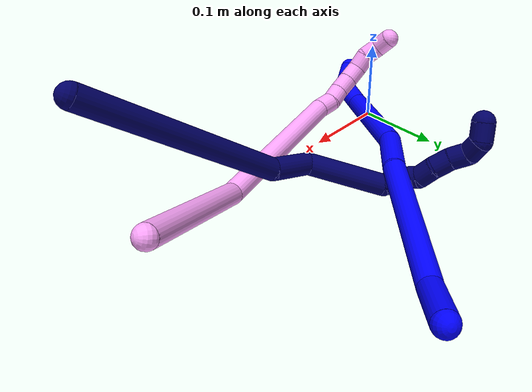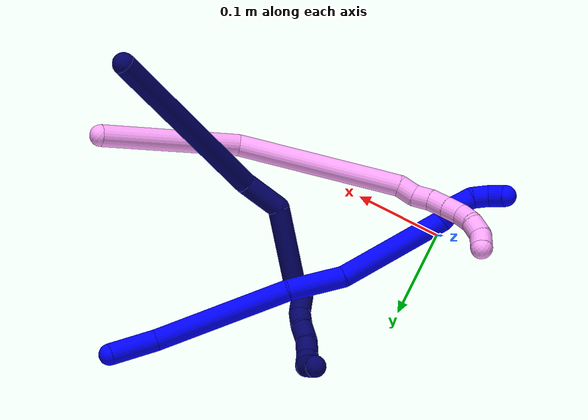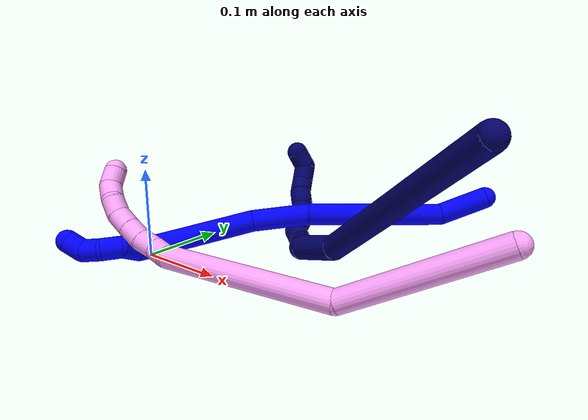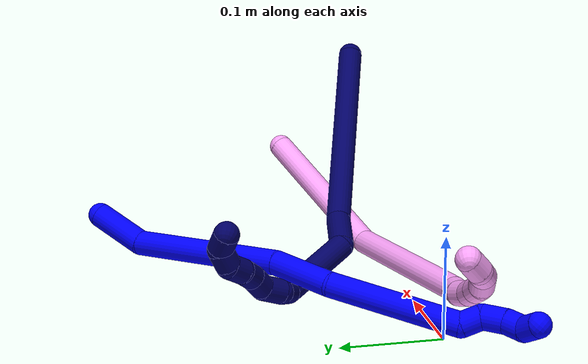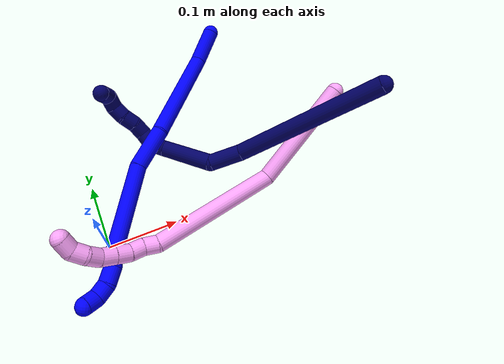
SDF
<sdf version="1.7">
 <world name="default">
  <model name="1">
   <static>0</static>
   <link name="1">
    <collision name="collision-cylinder-e_1_1_4">
     <pose>-0.008177 -0.003616 -0.026879 3.00788 -0.292852 -2.28922</pose>
     <geometry><cylinder><radius>0.0125</radius><length>0.056653</length></cylinder></geometry>
     <surface>
      <friction><ode><mu>1.16</mu><mu2>1.16</mu2><slip1>0</slip1><slip2>0</slip2></ode></friction>
      <contact><ode><kp>1e+06</kp><kd>1</kd><max_vel>0</max_vel><min_depth>0.001</min_depth></ode></contact>
     </surface>
    </collision>
    <visual name="visual-cylinder-e_1_1_4">
     <pose>-0.008177 -0.003616 -0.026879 3.00788 -0.292852 -2.28922</pose>
     <geometry><cylinder><radius>0.0125</radius><length>0.056653</length></cylinder></geometry>
     <material><ambient>0 0 1 1</ambient></material>
    </visual>
    <collision name="collision-cylinder-e_2_4_5">
     <pose>-0.048347 -0.046068 -0.116344 2.58622 -0.409757 -1.25982</pose>
     <geometry><cylinder><radius>0.0125</radius><length>0.16061</length></cylinder></geometry>
     <surface>
      <friction><ode><mu>1.16</mu><mu2>1.16</mu2><slip1>0</slip1><slip2>0</slip2></ode></friction>
      <contact><ode><kp>1e+06</kp><kd>1</kd><max_vel>0</max_vel><min_depth>0.001</min_depth></ode></contact>
     </surface>
    </collision>
    <visual name="visual-cylinder-e_2_4_5">
     <pose>-0.048347 -0.046068 -0.116344 2.58622 -0.409757 -1.25982</pose>
     <geometry><cylinder><radius>0.0125</radius><length>0.16061</length></cylinder></geometry>
     <material><ambient>0 0 1 1</ambient></material>
    </visual>
    <collision name="collision-cylinder-e_3_5_6">
     <pose>-0.094537 -0.094391 -0.206491 2.81005 -0.453282 -1.88631</pose>
     <geometry><cylinder><radius>0.0125</radius><length>0.064842</length></cylinder></geometry>
     <surface>
      <friction><ode><mu>1.16</mu><mu2>1.16</mu2><slip1>0</slip1><slip2>0</slip2></ode></friction>
      <contact><ode><kp>1e+06</kp><kd>1</kd><max_vel>0</max_vel><min_depth>0.001</min_depth></ode></contact>
     </surface>
    </collision>
    <visual name="visual-cylinder-e_3_5_6">
     <pose>-0.094537 -0.094391 -0.206491 2.81005 -0.453282 -1.88631</pose>
     <geometry><cylinder><radius>0.0125</radius><length>0.064842</length></cylinder></geometry>
     <material><ambient>0 0 1 1</ambient></material>
    </visual>
    <collision name="collision-cylinder-e_4_6_7">
     <pose>-0.121235 -0.130009 -0.29375 2.72901 -0.189502 -0.852573</pose>
     <geometry><cylinder><radius>0.0125</radius><length>0.132712</length></cylinder></geometry>
     <surface>
      <friction><ode><mu>1.16</mu><mu2>1.16</mu2><slip1>0</slip1><slip2>0</slip2></ode></friction>
      <contact><ode><kp>1e+06</kp><kd>1</kd><max_vel>0</max_vel><min_depth>0.001</min_depth></ode></contact>
     </surface>
    </collision>
    <visual name="visual-cylinder-e_4_6_7">
     <pose>-0.121235 -0.130009 -0.29375 2.72901 -0.189502 -0.852573</pose>
     <geometry><cylinder><radius>0.0125</radius><length>0.132712</length></cylinder></geometry>
     <material><ambient>0 0 1 1</ambient></material>
    </visual>
    <collision name="collision-cylinder-e_5_7_8">
     <pose>-0.134238 -0.165405 -0.358349 2.05722 -0.048012 -0.079673</pose>
     <geometry><cylinder><radius>0.0125</radius><length>0.020986</length></cylinder></geometry>
     <surface>
      <friction><ode><mu>1.16</mu><mu2>1.16</mu2><slip1>0</slip1><slip2>0</slip2></ode></friction>
      <contact><ode><kp>1e+06</kp><kd>1</kd><max_vel>0</max_vel><min_depth>0.001</min_depth></ode></contact>
     </surface>
    </collision>
    <visual name="visual-cylinder-e_5_7_8">
     <pose>-0.134238 -0.165405 -0.358349 2.05722 -0.048012 -0.079673</pose>
     <geometry><cylinder><radius>0.0125</radius><length>0.020986</length></cylinder></geometry>
     <material><ambient>0 0 1 1</ambient></material>
    </visual>
    <collision name="collision-cylinder-e_6_8_9">
     <pose>-0.137884 -0.180329 -0.373221 2.6255 -0.267513 -0.942956</pose>
     <geometry><cylinder><radius>0.0125</radius><length>0.023779</length></cylinder></geometry>
     <surface>
      <friction><ode><mu>1.16</mu><mu2>1.16</mu2><slip1>0</slip1><slip2>0</slip2></ode></friction>
      <contact><ode><kp>1e+06</kp><kd>1</kd><max_vel>0</max_vel><min_depth>0.001</min_depth></ode></contact>
     </surface>
    </collision>
    <visual name="visual-cylinder-e_6_8_9">
     <pose>-0.137884 -0.180329 -0.373221 2.6255 -0.267513 -0.942956</pose>
     <geometry><cylinder><radius>0.0125</radius><length>0.023779</length></cylinder></geometry>
     <material><ambient>0 0 1 1</ambient></material>
    </visual>
    <collision name="collision-cylinder-e_7_9_10">
     <pose>-0.146526 -0.188368 -0.391346 2.85746 -0.574695 -2.24009</pose>
     <geometry><cylinder><radius>0.0125</radius><length>0.020235</length></cylinder></geometry>
     <surface>
      <friction><ode><mu>1.16</mu><mu2>1.16</mu2><slip1>0</slip1><slip2>0</slip2></ode></friction>
      <contact><ode><kp>1e+06</kp><kd>1</kd><max_vel>0</max_vel><min_depth>0.001</min_depth></ode></contact>
     </surface>
    </collision>
    <visual name="visual-cylinder-e_7_9_10">
     <pose>-0.146526 -0.188368 -0.391346 2.85746 -0.574695 -2.24009</pose>
     <geometry><cylinder><radius>0.0125</radius><length>0.020235</length></cylinder></geometry>
     <material><ambient>0 0 1 1</ambient></material>
    </visual>
    <collision name="collision-cylinder-e_8_10_2">
     <pose>-0.159717 -0.19629 -0.402959 2.12913 -0.866619 -1.39078</pose>
     <geometry><cylinder><radius>0.0125</radius><length>0.020183</length></cylinder></geometry>
     <surface>
      <friction><ode><mu>1.16</mu><mu2>1.16</mu2><slip1>0</slip1><slip2>0</slip2></ode></friction>
      <contact><ode><kp>1e+06</kp><kd>1</kd><max_vel>0</max_vel><min_depth>0.001</min_depth></ode></contact>
     </surface>
    </collision>
    <visual name="visual-cylinder-e_8_10_2">
     <pose>-0.159717 -0.19629 -0.402959 2.12913 -0.866619 -1.39078</pose>
     <geometry><cylinder><radius>0.0125</radius><length>0.020183</length></cylinder></geometry>
     <material><ambient>0 0 1 1</ambient></material>
    </visual>
    <collision name="collision-sphere-2">
     <pose>-0.167409 -0.201831 -0.40642 0 -0 0</pose>
     <geometry><sphere><radius>0.0125</radius></sphere></geometry>
     <surface>
      <friction><ode><mu>1.16</mu><mu2>1.16</mu2><slip1>0</slip1><slip2>0</slip2></ode></friction>
      <contact><ode><kp>1e+06</kp><kd>1</kd><max_vel>0</max_vel><min_depth>0.001</min_depth></ode></contact>
     </surface>
    </collision>
    <visual name="visual-sphere-2">
     <pose>-0.167409 -0.201831 -0.40642 0 -0 0</pose>
     <geometry><sphere><radius>0.0125</radius></sphere></geometry>
     <material><ambient>0 0 1 1</ambient></material>
    </visual>
    <collision name="collision-sphere-10">
     <pose>-0.152026 -0.190748 -0.399498 0 -0 0</pose>
     <geometry><sphere><radius>0.0125</radius></sphere></geometry>
     <surface>
      <friction><ode><mu>1.16</mu><mu2>1.16</mu2><slip1>0</slip1><slip2>0</slip2></ode></friction>
      <contact><ode><kp>1e+06</kp><kd>1</kd><max_vel>0</max_vel><min_depth>0.001</min_depth></ode></contact>
     </surface>
    </collision>
    <visual name="visual-sphere-10">
     <pose>-0.152026 -0.190748 -0.399498 0 -0 0</pose>
     <geometry><sphere><radius>0.0125</radius></sphere></geometry>
     <material><ambient>0 0 1 1</ambient></material>
    </visual>
    <collision name="collision-sphere-9">
     <pose>-0.141027 -0.185987 -0.383195 0 -0 0</pose>
     <geometry><sphere><radius>0.0125</radius></sphere></geometry>
     <surface>
      <friction><ode><mu>1.16</mu><mu2>1.16</mu2><slip1>0</slip1><slip2>0</slip2></ode></friction>
      <contact><ode><kp>1e+06</kp><kd>1</kd><max_vel>0</max_vel><min_depth>0.001</min_depth></ode></contact>
     </surface>
    </collision>
    <visual name="visual-sphere-9">
     <pose>-0.141027 -0.185987 -0.383195 0 -0 0</pose>
     <geometry><sphere><radius>0.0125</radius></sphere></geometry>
     <material><ambient>0 0 1 1</ambient></material>
    </visual>
    <collision name="collision-sphere-4">
     <pose>-0.016355 -0.007231 -0.053757 0 -0 0</pose>
     <geometry><sphere><radius>0.0125</radius></sphere></geometry>
     <surface>
      <friction><ode><mu>1.16</mu><mu2>1.16</mu2><slip1>0</slip1><slip2>0</slip2></ode></friction>
      <contact><ode><kp>1e+06</kp><kd>1</kd><max_vel>0</max_vel><min_depth>0.001</min_depth></ode></contact>
     </surface>
    </collision>
    <visual name="visual-sphere-4">
     <pose>-0.016355 -0.007231 -0.053757 0 -0 0</pose>
     <geometry><sphere><radius>0.0125</radius></sphere></geometry>
     <material><ambient>0 0 1 1</ambient></material>
    </visual>
    <collision name="collision-sphere-1">
     <geometry><sphere><radius>0.0125</radius></sphere></geometry>
     <surface>
      <friction><ode><mu>1.16</mu><mu2>1.16</mu2><slip1>0</slip1><slip2>0</slip2></ode></friction>
      <contact><ode><kp>1e+06</kp><kd>1</kd><max_vel>0</max_vel><min_depth>0.001</min_depth></ode></contact>
     </surface>
    </collision>
    <visual name="visual-sphere-1">
     <geometry><sphere><radius>0.0125</radius></sphere></geometry>
     <material><ambient>0 0 1 1</ambient></material>
    </visual>
    <collision name="collision-sphere-8">
     <pose>-0.134741 -0.17467 -0.363248 0 -0 0</pose>
     <geometry><sphere><radius>0.0125</radius></sphere></geometry>
     <surface>
      <friction><ode><mu>1.16</mu><mu2>1.16</mu2><slip1>0</slip1><slip2>0</slip2></ode></friction>
      <contact><ode><kp>1e+06</kp><kd>1</kd><max_vel>0</max_vel><min_depth>0.001</min_depth></ode></contact>
     </surface>
    </collision>
    <visual name="visual-sphere-8">
     <pose>-0.134741 -0.17467 -0.363248 0 -0 0</pose>
     <geometry><sphere><radius>0.0125</radius></sphere></geometry>
     <material><ambient>0 0 1 1</ambient></material>
    </visual>
    <collision name="collision-sphere-5">
     <pose>-0.08034 -0.084904 -0.178931 0 -0 0</pose>
     <geometry><sphere><radius>0.0125</radius></sphere></geometry>
     <surface>
      <friction><ode><mu>1.16</mu><mu2>1.16</mu2><slip1>0</slip1><slip2>0</slip2></ode></friction>
      <contact><ode><kp>1e+06</kp><kd>1</kd><max_vel>0</max_vel><min_depth>0.001</min_depth></ode></contact>
     </surface>
    </collision>
    <visual name="visual-sphere-5">
     <pose>-0.08034 -0.084904 -0.178931 0 -0 0</pose>
     <geometry><sphere><radius>0.0125</radius></sphere></geometry>
     <material><ambient>0 0 1 1</ambient></material>
    </visual>
    <collision name="collision-sphere-6">
     <pose>-0.108735 -0.103879 -0.23405 0 -0 0</pose>
     <geometry><sphere><radius>0.0125</radius></sphere></geometry>
     <surface>
      <friction><ode><mu>1.16</mu><mu2>1.16</mu2><slip1>0</slip1><slip2>0</slip2></ode></friction>
      <contact><ode><kp>1e+06</kp><kd>1</kd><max_vel>0</max_vel><min_depth>0.001</min_depth></ode></contact>
     </surface>
    </collision>
    <visual name="visual-sphere-6">
     <pose>-0.108735 -0.103879 -0.23405 0 -0 0</pose>
     <geometry><sphere><radius>0.0125</radius></sphere></geometry>
     <material><ambient>0 0 1 1</ambient></material>
    </visual>
    <collision name="collision-sphere-7">
     <pose>-0.133734 -0.15614 -0.353449 0 -0 0</pose>
     <geometry><sphere><radius>0.0125</radius></sphere></geometry>
     <surface>
      <friction><ode><mu>1.16</mu><mu2>1.16</mu2><slip1>0</slip1><slip2>0</slip2></ode></friction>
      <contact><ode><kp>1e+06</kp><kd>1</kd><max_vel>0</max_vel><min_depth>0.001</min_depth></ode></contact>
     </surface>
    </collision>
    <visual name="visual-sphere-7">
     <pose>-0.133734 -0.15614 -0.353449 0 -0 0</pose>
     <geometry><sphere><radius>0.0125</radius></sphere></geometry>
     <material><ambient>0 0 1 1</ambient></material>
    </visual>
    <inertial>
     <pose>-0.085464 -0.093021 -0.210058 0 -0 0</pose>
     <mass>0.5</mass>
     <inertia>
      <ixx>-0.000294</ixx>
      <ixy>0</ixy>
      <ixz>0</ixz>
      <iyy>-0.000616</iyy>
      <iyz>0</iyz>
      <izz>0.000426</izz>
     </inertia>
    </inertial>
   </link>
   <pose>0.271951 0.286829 0.054566 -0.893345 0.380798 -0.316649</pose>
  </model>
  <model name="4">
   <static>0</static>
   <link name="4">
    <collision name="collision-cylinder-e_1_1_4">
     <pose>-0.011018 -0.044413 -0.06943 2.57251 -0.132899 -0.447445</pose>
     <geometry><cylinder><radius>0.0125</radius><length>0.166306</length></cylinder></geometry>
     <surface>
      <friction><ode><mu>1.16</mu><mu2>1.16</mu2><slip1>0</slip1><slip2>0</slip2></ode></friction>
      <contact><ode><kp>1e+06</kp><kd>1</kd><max_vel>0</max_vel><min_depth>0.001</min_depth></ode></contact>
     </surface>
    </collision>
    <visual name="visual-cylinder-e_1_1_4">
     <pose>-0.011018 -0.044413 -0.06943 2.57251 -0.132899 -0.447445</pose>
     <geometry><cylinder><radius>0.0125</radius><length>0.166306</length></cylinder></geometry>
     <material><ambient>1 0.65098 0.996078 1</ambient></material>
    </visual>
    <collision name="collision-cylinder-e_2_4_5">
     <pose>-0.074835 -0.109943 -0.215434 2.8725 -0.58664 -2.29891</pose>
     <geometry><cylinder><radius>0.0125</radius><length>0.190757</length></cylinder></geometry>
     <surface>
      <friction><ode><mu>1.16</mu><mu2>1.16</mu2><slip1>0</slip1><slip2>0</slip2></ode></friction>
      <contact><ode><kp>1e+06</kp><kd>1</kd><max_vel>0</max_vel><min_depth>0.001</min_depth></ode></contact>
     </surface>
    </collision>
    <visual name="visual-cylinder-e_2_4_5">
     <pose>-0.074835 -0.109943 -0.215434 2.8725 -0.58664 -2.29891</pose>
     <geometry><cylinder><radius>0.0125</radius><length>0.190757</length></cylinder></geometry>
     <material><ambient>1 0.65098 0.996078 1</ambient></material>
    </visual>
    <collision name="collision-cylinder-e_3_5_6">
     <pose>-0.133148 -0.129717 -0.300515 -2.98496 -0.569505 2.6177</pose>
     <geometry><cylinder><radius>0.0125</radius><length>0.020456</length></cylinder></geometry>
     <surface>
      <friction><ode><mu>1.16</mu><mu2>1.16</mu2><slip1>0</slip1><slip2>0</slip2></ode></friction>
      <contact><ode><kp>1e+06</kp><kd>1</kd><max_vel>0</max_vel><min_depth>0.001</min_depth></ode></contact>
     </surface>
    </collision>
    <visual name="visual-cylinder-e_3_5_6">
     <pose>-0.133148 -0.129717 -0.300515 -2.98496 -0.569505 2.6177</pose>
     <geometry><cylinder><radius>0.0125</radius><length>0.020456</length></cylinder></geometry>
     <material><ambient>1 0.65098 0.996078 1</ambient></material>
    </visual>
    <collision name="collision-cylinder-e_4_6_7">
     <pose>-0.146302 -0.129269 -0.315797 3.01006 -0.841043 -2.84914</pose>
     <geometry><cylinder><radius>0.0125</radius><length>0.020497</length></cylinder></geometry>
     <surface>
      <friction><ode><mu>1.16</mu><mu2>1.16</mu2><slip1>0</slip1><slip2>0</slip2></ode></friction>
      <contact><ode><kp>1e+06</kp><kd>1</kd><max_vel>0</max_vel><min_depth>0.001</min_depth></ode></contact>
     </surface>
    </collision>
    <visual name="visual-cylinder-e_4_6_7">
     <pose>-0.146302 -0.129269 -0.315797 3.01006 -0.841043 -2.84914</pose>
     <geometry><cylinder><radius>0.0125</radius><length>0.020497</length></cylinder></geometry>
     <material><ambient>1 0.65098 0.996078 1</ambient></material>
    </visual>
    <collision name="collision-cylinder-e_5_7_8">
     <pose>-0.16226 -0.128689 -0.328877 -2.91169 -0.909264 2.67766</pose>
     <geometry><cylinder><radius>0.0125</radius><length>0.021088</length></cylinder></geometry>
     <surface>
      <friction><ode><mu>1.16</mu><mu2>1.16</mu2><slip1>0</slip1><slip2>0</slip2></ode></friction>
      <contact><ode><kp>1e+06</kp><kd>1</kd><max_vel>0</max_vel><min_depth>0.001</min_depth></ode></contact>
     </surface>
    </collision>
    <visual name="visual-cylinder-e_5_7_8">
     <pose>-0.16226 -0.128689 -0.328877 -2.91169 -0.909264 2.67766</pose>
     <geometry><cylinder><radius>0.0125</radius><length>0.021088</length></cylinder></geometry>
     <material><ambient>1 0.65098 0.996078 1</ambient></material>
    </visual>
    <collision name="collision-cylinder-e_6_8_9">
     <pose>-0.178937 -0.125529 -0.341105 -2.86452 -0.935938 2.60324</pose>
     <geometry><cylinder><radius>0.0125</radius><length>0.02076</length></cylinder></geometry>
     <surface>
      <friction><ode><mu>1.16</mu><mu2>1.16</mu2><slip1>0</slip1><slip2>0</slip2></ode></friction>
      <contact><ode><kp>1e+06</kp><kd>1</kd><max_vel>0</max_vel><min_depth>0.001</min_depth></ode></contact>
     </surface>
    </collision>
    <visual name="visual-cylinder-e_6_8_9">
     <pose>-0.178937 -0.125529 -0.341105 -2.86452 -0.935938 2.60324</pose>
     <geometry><cylinder><radius>0.0125</radius><length>0.02076</length></cylinder></geometry>
     <material><ambient>1 0.65098 0.996078 1</ambient></material>
    </visual>
    <collision name="collision-cylinder-e_7_9_10">
     <pose>-0.195982 -0.119984 -0.350247 -2.26593 -1.04613 1.77776</pose>
     <geometry><cylinder><radius>0.0125</radius><length>0.020076</length></cylinder></geometry>
     <surface>
      <friction><ode><mu>1.16</mu><mu2>1.16</mu2><slip1>0</slip1><slip2>0</slip2></ode></friction>
      <contact><ode><kp>1e+06</kp><kd>1</kd><max_vel>0</max_vel><min_depth>0.001</min_depth></ode></contact>
     </surface>
    </collision>
    <visual name="visual-cylinder-e_7_9_10">
     <pose>-0.195982 -0.119984 -0.350247 -2.26593 -1.04613 1.77776</pose>
     <geometry><cylinder><radius>0.0125</radius><length>0.020076</length></cylinder></geometry>
     <material><ambient>1 0.65098 0.996078 1</ambient></material>
    </visual>
    <collision name="collision-cylinder-e_8_10_11">
     <pose>-0.21105 -0.110394 -0.358623 -2.30361 -0.691516 1.36022</pose>
     <geometry><cylinder><radius>0.0125</radius><length>0.02001</length></cylinder></geometry>
     <surface>
      <friction><ode><mu>1.16</mu><mu2>1.16</mu2><slip1>0</slip1><slip2>0</slip2></ode></friction>
      <contact><ode><kp>1e+06</kp><kd>1</kd><max_vel>0</max_vel><min_depth>0.001</min_depth></ode></contact>
     </surface>
    </collision>
    <visual name="visual-cylinder-e_8_10_11">
     <pose>-0.21105 -0.110394 -0.358623 -2.30361 -0.691516 1.36022</pose>
     <geometry><cylinder><radius>0.0125</radius><length>0.02001</length></cylinder></geometry>
     <material><ambient>1 0.65098 0.996078 1</ambient></material>
    </visual>
    <collision name="collision-cylinder-e_9_11_2">
     <pose>-0.222801 -0.096266 -0.364831 -1.69548 -0.565263 0.635826</pose>
     <geometry><cylinder><radius>0.0125</radius><length>0.020051</length></cylinder></geometry>
     <surface>
      <friction><ode><mu>1.16</mu><mu2>1.16</mu2><slip1>0</slip1><slip2>0</slip2></ode></friction>
      <contact><ode><kp>1e+06</kp><kd>1</kd><max_vel>0</max_vel><min_depth>0.001</min_depth></ode></contact>
     </surface>
    </collision>
    <visual name="visual-cylinder-e_9_11_2">
     <pose>-0.222801 -0.096266 -0.364831 -1.69548 -0.565263 0.635826</pose>
     <geometry><cylinder><radius>0.0125</radius><length>0.020051</length></cylinder></geometry>
     <material><ambient>1 0.65098 0.996078 1</ambient></material>
    </visual>
    <collision name="collision-sphere-2">
     <pose>-0.228171 -0.087865 -0.365884 0 -0 0</pose>
     <geometry><sphere><radius>0.0125</radius></sphere></geometry>
     <surface>
      <friction><ode><mu>1.16</mu><mu2>1.16</mu2><slip1>0</slip1><slip2>0</slip2></ode></friction>
      <contact><ode><kp>1e+06</kp><kd>1</kd><max_vel>0</max_vel><min_depth>0.001</min_depth></ode></contact>
     </surface>
    </collision>
    <visual name="visual-sphere-2">
     <pose>-0.228171 -0.087865 -0.365884 0 -0 0</pose>
     <geometry><sphere><radius>0.0125</radius></sphere></geometry>
     <material><ambient>1 0.65098 0.996078 1</ambient></material>
    </visual>
    <collision name="collision-sphere-11">
     <pose>-0.217431 -0.104666 -0.363778 0 -0 0</pose>
     <geometry><sphere><radius>0.0125</radius></sphere></geometry>
     <surface>
      <friction><ode><mu>1.16</mu><mu2>1.16</mu2><slip1>0</slip1><slip2>0</slip2></ode></friction>
      <contact><ode><kp>1e+06</kp><kd>1</kd><max_vel>0</max_vel><min_depth>0.001</min_depth></ode></contact>
     </surface>
    </collision>
    <visual name="visual-sphere-11">
     <pose>-0.217431 -0.104666 -0.363778 0 -0 0</pose>
     <geometry><sphere><radius>0.0125</radius></sphere></geometry>
     <material><ambient>1 0.65098 0.996078 1</ambient></material>
    </visual>
    <collision name="collision-sphere-10">
     <pose>-0.20467 -0.116122 -0.353467 0 -0 0</pose>
     <geometry><sphere><radius>0.0125</radius></sphere></geometry>
     <surface>
      <friction><ode><mu>1.16</mu><mu2>1.16</mu2><slip1>0</slip1><slip2>0</slip2></ode></friction>
      <contact><ode><kp>1e+06</kp><kd>1</kd><max_vel>0</max_vel><min_depth>0.001</min_depth></ode></contact>
     </surface>
    </collision>
    <visual name="visual-sphere-10">
     <pose>-0.20467 -0.116122 -0.353467 0 -0 0</pose>
     <geometry><sphere><radius>0.0125</radius></sphere></geometry>
     <material><ambient>1 0.65098 0.996078 1</ambient></material>
    </visual>
    <collision name="collision-sphere-9">
     <pose>-0.187295 -0.123845 -0.347026 0 -0 0</pose>
     <geometry><sphere><radius>0.0125</radius></sphere></geometry>
     <surface>
      <friction><ode><mu>1.16</mu><mu2>1.16</mu2><slip1>0</slip1><slip2>0</slip2></ode></friction>
      <contact><ode><kp>1e+06</kp><kd>1</kd><max_vel>0</max_vel><min_depth>0.001</min_depth></ode></contact>
     </surface>
    </collision>
    <visual name="visual-sphere-9">
     <pose>-0.187295 -0.123845 -0.347026 0 -0 0</pose>
     <geometry><sphere><radius>0.0125</radius></sphere></geometry>
     <material><ambient>1 0.65098 0.996078 1</ambient></material>
    </visual>
    <collision name="collision-sphere-4">
     <pose>-0.022037 -0.088825 -0.138861 0 -0 0</pose>
     <geometry><sphere><radius>0.0125</radius></sphere></geometry>
     <surface>
      <friction><ode><mu>1.16</mu><mu2>1.16</mu2><slip1>0</slip1><slip2>0</slip2></ode></friction>
      <contact><ode><kp>1e+06</kp><kd>1</kd><max_vel>0</max_vel><min_depth>0.001</min_depth></ode></contact>
     </surface>
    </collision>
    <visual name="visual-sphere-4">
     <pose>-0.022037 -0.088825 -0.138861 0 -0 0</pose>
     <geometry><sphere><radius>0.0125</radius></sphere></geometry>
     <material><ambient>1 0.65098 0.996078 1</ambient></material>
    </visual>
    <collision name="collision-sphere-1">
     <geometry><sphere><radius>0.0125</radius></sphere></geometry>
     <surface>
      <friction><ode><mu>1.16</mu><mu2>1.16</mu2><slip1>0</slip1><slip2>0</slip2></ode></friction>
      <contact><ode><kp>1e+06</kp><kd>1</kd><max_vel>0</max_vel><min_depth>0.001</min_depth></ode></contact>
     </surface>
    </collision>
    <visual name="visual-sphere-1">
     <geometry><sphere><radius>0.0125</radius></sphere></geometry>
     <material><ambient>1 0.65098 0.996078 1</ambient></material>
    </visual>
    <collision name="collision-sphere-8">
     <pose>-0.17058 -0.127213 -0.335184 0 -0 0</pose>
     <geometry><sphere><radius>0.0125</radius></sphere></geometry>
     <surface>
      <friction><ode><mu>1.16</mu><mu2>1.16</mu2><slip1>0</slip1><slip2>0</slip2></ode></friction>
      <contact><ode><kp>1e+06</kp><kd>1</kd><max_vel>0</max_vel><min_depth>0.001</min_depth></ode></contact>
     </surface>
    </collision>
    <visual name="visual-sphere-8">
     <pose>-0.17058 -0.127213 -0.335184 0 -0 0</pose>
     <geometry><sphere><radius>0.0125</radius></sphere></geometry>
     <material><ambient>1 0.65098 0.996078 1</ambient></material>
    </visual>
    <collision name="collision-sphere-5">
     <pose>-0.127633 -0.13106 -0.292007 0 -0 0</pose>
     <geometry><sphere><radius>0.0125</radius></sphere></geometry>
     <surface>
      <friction><ode><mu>1.16</mu><mu2>1.16</mu2><slip1>0</slip1><slip2>0</slip2></ode></friction>
      <contact><ode><kp>1e+06</kp><kd>1</kd><max_vel>0</max_vel><min_depth>0.001</min_depth></ode></contact>
     </surface>
    </collision>
    <visual name="visual-sphere-5">
     <pose>-0.127633 -0.13106 -0.292007 0 -0 0</pose>
     <geometry><sphere><radius>0.0125</radius></sphere></geometry>
     <material><ambient>1 0.65098 0.996078 1</ambient></material>
    </visual>
    <collision name="collision-sphere-6">
     <pose>-0.138664 -0.128373 -0.309023 0 -0 0</pose>
     <geometry><sphere><radius>0.0125</radius></sphere></geometry>
     <surface>
      <friction><ode><mu>1.16</mu><mu2>1.16</mu2><slip1>0</slip1><slip2>0</slip2></ode></friction>
      <contact><ode><kp>1e+06</kp><kd>1</kd><max_vel>0</max_vel><min_depth>0.001</min_depth></ode></contact>
     </surface>
    </collision>
    <visual name="visual-sphere-6">
     <pose>-0.138664 -0.128373 -0.309023 0 -0 0</pose>
     <geometry><sphere><radius>0.0125</radius></sphere></geometry>
     <material><ambient>1 0.65098 0.996078 1</ambient></material>
    </visual>
    <collision name="collision-sphere-7">
     <pose>-0.153941 -0.130165 -0.32257 0 -0 0</pose>
     <geometry><sphere><radius>0.0125</radius></sphere></geometry>
     <surface>
      <friction><ode><mu>1.16</mu><mu2>1.16</mu2><slip1>0</slip1><slip2>0</slip2></ode></friction>
      <contact><ode><kp>1e+06</kp><kd>1</kd><max_vel>0</max_vel><min_depth>0.001</min_depth></ode></contact>
     </surface>
    </collision>
    <visual name="visual-sphere-7">
     <pose>-0.153941 -0.130165 -0.32257 0 -0 0</pose>
     <geometry><sphere><radius>0.0125</radius></sphere></geometry>
     <material><ambient>1 0.65098 0.996078 1</ambient></material>
    </visual>
    <inertial>
     <pose>-0.083183 -0.091058 -0.201603 0 -0 0</pose>
     <mass>0.5</mass>
     <inertia>
      <ixx>-0.000524</ixx>
      <ixy>0</ixy>
      <ixz>0</ixz>
      <iyy>-0.00037</iyy>
      <iyz>0</iyz>
      <izz>0.00069</izz>
     </inertia>
    </inertial>
   </link>
   <pose>0.388499 0.071198 0.082272 0.746317 0.991647 0.610541</pose>
  </model>
  <model name="7">
   <static>0</static>
   <link name="7">
    <collision name="collision-cylinder-e_1_1_4">
     <pose>0.001986 -0.010595 -0.109897 3.04548 0.017985 0.36971</pose>
     <geometry><cylinder><radius>0.0125</radius><length>0.220848</length></cylinder></geometry>
     <surface>
      <friction><ode><mu>1.16</mu><mu2>1.16</mu2><slip1>0</slip1><slip2>0</slip2></ode></friction>
      <contact><ode><kp>1e+06</kp><kd>1</kd><max_vel>0</max_vel><min_depth>0.001</min_depth></ode></contact>
     </surface>
    </collision>
    <visual name="visual-cylinder-e_1_1_4">
     <pose>0.001986 -0.010595 -0.109897 3.04548 0.017985 0.36971</pose>
     <geometry><cylinder><radius>0.0125</radius><length>0.220848</length></cylinder></geometry>
     <material><ambient>0.003922 0 0.403922 1</ambient></material>
    </visual>
    <collision name="collision-cylinder-e_2_4_5">
     <pose>-0.005227 -0.022551 -0.241847 3.07993 -0.394509 -2.83538</pose>
     <geometry><cylinder><radius>0.0125</radius><length>0.047867</length></cylinder></geometry>
     <surface>
      <friction><ode><mu>1.16</mu><mu2>1.16</mu2><slip1>0</slip1><slip2>0</slip2></ode></friction>
      <contact><ode><kp>1e+06</kp><kd>1</kd><max_vel>0</max_vel><min_depth>0.001</min_depth></ode></contact>
     </surface>
    </collision>
    <visual name="visual-cylinder-e_2_4_5">
     <pose>-0.005227 -0.022551 -0.241847 3.07993 -0.394509 -2.83538</pose>
     <geometry><cylinder><radius>0.0125</radius><length>0.047867</length></cylinder></geometry>
     <material><ambient>0.003922 0 0.403922 1</ambient></material>
    </visual>
    <collision name="collision-cylinder-e_3_5_6">
     <pose>-0.015032 -0.001025 -0.301522 -2.59506 -0.013749 0.049044</pose>
     <geometry><cylinder><radius>0.0125</radius><length>0.088082</length></cylinder></geometry>
     <surface>
      <friction><ode><mu>1.16</mu><mu2>1.16</mu2><slip1>0</slip1><slip2>0</slip2></ode></friction>
      <contact><ode><kp>1e+06</kp><kd>1</kd><max_vel>0</max_vel><min_depth>0.001</min_depth></ode></contact>
     </surface>
    </collision>
    <visual name="visual-cylinder-e_3_5_6">
     <pose>-0.015032 -0.001025 -0.301522 -2.59506 -0.013749 0.049044</pose>
     <geometry><cylinder><radius>0.0125</radius><length>0.088082</length></cylinder></geometry>
     <material><ambient>0.003922 0 0.403922 1</ambient></material>
    </visual>
    <collision name="collision-cylinder-e_4_6_7">
     <pose>-0.022087 0.02706 -0.345329 -2.4427 -0.673795 1.5312</pose>
     <geometry><cylinder><radius>0.0125</radius><length>0.020676</length></cylinder></geometry>
     <surface>
      <friction><ode><mu>1.16</mu><mu2>1.16</mu2><slip1>0</slip1><slip2>0</slip2></ode></friction>
      <contact><ode><kp>1e+06</kp><kd>1</kd><max_vel>0</max_vel><min_depth>0.001</min_depth></ode></contact>
     </surface>
    </collision>
    <visual name="visual-cylinder-e_4_6_7">
     <pose>-0.022087 0.02706 -0.345329 -2.4427 -0.673795 1.5312</pose>
     <geometry><cylinder><radius>0.0125</radius><length>0.020676</length></cylinder></geometry>
     <material><ambient>0.003922 0 0.403922 1</ambient></material>
    </visual>
    <collision name="collision-cylinder-e_5_7_8">
     <pose>-0.031136 0.042349 -0.354829 -1.88819 -0.239882 0.329867</pose>
     <geometry><cylinder><radius>0.0125</radius><length>0.021872</length></cylinder></geometry>
     <surface>
      <friction><ode><mu>1.16</mu><mu2>1.16</mu2><slip1>0</slip1><slip2>0</slip2></ode></friction>
      <contact><ode><kp>1e+06</kp><kd>1</kd><max_vel>0</max_vel><min_depth>0.001</min_depth></ode></contact>
     </surface>
    </collision>
    <visual name="visual-cylinder-e_5_7_8">
     <pose>-0.031136 0.042349 -0.354829 -1.88819 -0.239882 0.329867</pose>
     <geometry><cylinder><radius>0.0125</radius><length>0.021872</length></cylinder></geometry>
     <material><ambient>0.003922 0 0.403922 1</ambient></material>
    </visual>
    <collision name="collision-cylinder-e_6_8_9">
     <pose>-0.040409 0.060102 -0.358985 -1.68016 -0.713745 0.788475</pose>
     <geometry><cylinder><radius>0.0125</radius><length>0.02039</length></cylinder></geometry>
     <surface>
      <friction><ode><mu>1.16</mu><mu2>1.16</mu2><slip1>0</slip1><slip2>0</slip2></ode></friction>
      <contact><ode><kp>1e+06</kp><kd>1</kd><max_vel>0</max_vel><min_depth>0.001</min_depth></ode></contact>
     </surface>
    </collision>
    <visual name="visual-cylinder-e_6_8_9">
     <pose>-0.040409 0.060102 -0.358985 -1.68016 -0.713745 0.788475</pose>
     <geometry><cylinder><radius>0.0125</radius><length>0.02039</length></cylinder></geometry>
     <material><ambient>0.003922 0 0.403922 1</ambient></material>
    </visual>
    <collision name="collision-cylinder-e_7_9_10">
     <pose>-0.053659 0.074565 -0.36313 -2.0229 -0.715741 1.07696</pose>
     <geometry><cylinder><radius>0.0125</radius><length>0.020041</length></cylinder></geometry>
     <surface>
      <friction><ode><mu>1.16</mu><mu2>1.16</mu2><slip1>0</slip1><slip2>0</slip2></ode></friction>
      <contact><ode><kp>1e+06</kp><kd>1</kd><max_vel>0</max_vel><min_depth>0.001</min_depth></ode></contact>
     </surface>
    </collision>
    <visual name="visual-cylinder-e_7_9_10">
     <pose>-0.053659 0.074565 -0.36313 -2.0229 -0.715741 1.07696</pose>
     <geometry><cylinder><radius>0.0125</radius><length>0.020041</length></cylinder></geometry>
     <material><ambient>0.003922 0 0.403922 1</ambient></material>
    </visual>
    <collision name="collision-cylinder-e_8_10_11">
     <pose>-0.06491 0.089685 -0.369511 -1.92518 -0.485225 0.683058</pose>
     <geometry><cylinder><radius>0.0125</radius><length>0.020055</length></cylinder></geometry>
     <surface>
      <friction><ode><mu>1.16</mu><mu2>1.16</mu2><slip1>0</slip1><slip2>0</slip2></ode></friction>
      <contact><ode><kp>1e+06</kp><kd>1</kd><max_vel>0</max_vel><min_depth>0.001</min_depth></ode></contact>
     </surface>
    </collision>
    <visual name="visual-cylinder-e_8_10_11">
     <pose>-0.06491 0.089685 -0.369511 -1.92518 -0.485225 0.683058</pose>
     <geometry><cylinder><radius>0.0125</radius><length>0.020055</length></cylinder></geometry>
     <material><ambient>0.003922 0 0.403922 1</ambient></material>
    </visual>
    <collision name="collision-cylinder-e_9_11_12">
     <pose>-0.076045 0.105306 -0.370089 -1.24093 -0.696697 0.507834</pose>
     <geometry><cylinder><radius>0.0125</radius><length>0.020127</length></cylinder></geometry>
     <surface>
      <friction><ode><mu>1.16</mu><mu2>1.16</mu2><slip1>0</slip1><slip2>0</slip2></ode></friction>
      <contact><ode><kp>1e+06</kp><kd>1</kd><max_vel>0</max_vel><min_depth>0.001</min_depth></ode></contact>
     </surface>
    </collision>
    <visual name="visual-cylinder-e_9_11_12">
     <pose>-0.076045 0.105306 -0.370089 -1.24093 -0.696697 0.507834</pose>
     <geometry><cylinder><radius>0.0125</radius><length>0.020127</length></cylinder></geometry>
     <material><ambient>0.003922 0 0.403922 1</ambient></material>
    </visual>
    <collision name="collision-cylinder-e_10_12_2">
     <pose>-0.092168 0.113258 -0.365024 -0.247995 -1.30363 0.189642</pose>
     <geometry><cylinder><radius>0.0125</radius><length>0.020041</length></cylinder></geometry>
     <surface>
      <friction><ode><mu>1.16</mu><mu2>1.16</mu2><slip1>0</slip1><slip2>0</slip2></ode></friction>
      <contact><ode><kp>1e+06</kp><kd>1</kd><max_vel>0</max_vel><min_depth>0.001</min_depth></ode></contact>
     </surface>
    </collision>
    <visual name="visual-cylinder-e_10_12_2">
     <pose>-0.092168 0.113258 -0.365024 -0.247995 -1.30363 0.189642</pose>
     <geometry><cylinder><radius>0.0125</radius><length>0.020041</length></cylinder></geometry>
     <material><ambient>0.003922 0 0.403922 1</ambient></material>
    </visual>
    <collision name="collision-sphere-2">
     <pose>-0.101833 0.113907 -0.36246 0 -0 0</pose>
     <geometry><sphere><radius>0.0125</radius></sphere></geometry>
     <surface>
      <friction><ode><mu>1.16</mu><mu2>1.16</mu2><slip1>0</slip1><slip2>0</slip2></ode></friction>
      <contact><ode><kp>1e+06</kp><kd>1</kd><max_vel>0</max_vel><min_depth>0.001</min_depth></ode></contact>
     </surface>
    </collision>
    <visual name="visual-sphere-2">
     <pose>-0.101833 0.113907 -0.36246 0 -0 0</pose>
     <geometry><sphere><radius>0.0125</radius></sphere></geometry>
     <material><ambient>0.003922 0 0.403922 1</ambient></material>
    </visual>
    <collision name="collision-sphere-12">
     <pose>-0.082503 0.112609 -0.367589 0 -0 0</pose>
     <geometry><sphere><radius>0.0125</radius></sphere></geometry>
     <surface>
      <friction><ode><mu>1.16</mu><mu2>1.16</mu2><slip1>0</slip1><slip2>0</slip2></ode></friction>
      <contact><ode><kp>1e+06</kp><kd>1</kd><max_vel>0</max_vel><min_depth>0.001</min_depth></ode></contact>
     </surface>
    </collision>
    <visual name="visual-sphere-12">
     <pose>-0.082503 0.112609 -0.367589 0 -0 0</pose>
     <geometry><sphere><radius>0.0125</radius></sphere></geometry>
     <material><ambient>0.003922 0 0.403922 1</ambient></material>
    </visual>
    <collision name="collision-sphere-11">
     <pose>-0.069587 0.098004 -0.372589 0 -0 0</pose>
     <geometry><sphere><radius>0.0125</radius></sphere></geometry>
     <surface>
      <friction><ode><mu>1.16</mu><mu2>1.16</mu2><slip1>0</slip1><slip2>0</slip2></ode></friction>
      <contact><ode><kp>1e+06</kp><kd>1</kd><max_vel>0</max_vel><min_depth>0.001</min_depth></ode></contact>
     </surface>
    </collision>
    <visual name="visual-sphere-11">
     <pose>-0.069587 0.098004 -0.372589 0 -0 0</pose>
     <geometry><sphere><radius>0.0125</radius></sphere></geometry>
     <material><ambient>0.003922 0 0.403922 1</ambient></material>
    </visual>
    <collision name="collision-sphere-10">
     <pose>-0.060234 0.081367 -0.366433 0 -0 0</pose>
     <geometry><sphere><radius>0.0125</radius></sphere></geometry>
     <surface>
      <friction><ode><mu>1.16</mu><mu2>1.16</mu2><slip1>0</slip1><slip2>0</slip2></ode></friction>
      <contact><ode><kp>1e+06</kp><kd>1</kd><max_vel>0</max_vel><min_depth>0.001</min_depth></ode></contact>
     </surface>
    </collision>
    <visual name="visual-sphere-10">
     <pose>-0.060234 0.081367 -0.366433 0 -0 0</pose>
     <geometry><sphere><radius>0.0125</radius></sphere></geometry>
     <material><ambient>0.003922 0 0.403922 1</ambient></material>
    </visual>
    <collision name="collision-sphere-9">
     <pose>-0.047083 0.067763 -0.359826 0 -0 0</pose>
     <geometry><sphere><radius>0.0125</radius></sphere></geometry>
     <surface>
      <friction><ode><mu>1.16</mu><mu2>1.16</mu2><slip1>0</slip1><slip2>0</slip2></ode></friction>
      <contact><ode><kp>1e+06</kp><kd>1</kd><max_vel>0</max_vel><min_depth>0.001</min_depth></ode></contact>
     </surface>
    </collision>
    <visual name="visual-sphere-9">
     <pose>-0.047083 0.067763 -0.359826 0 -0 0</pose>
     <geometry><sphere><radius>0.0125</radius></sphere></geometry>
     <material><ambient>0.003922 0 0.403922 1</ambient></material>
    </visual>
    <collision name="collision-sphere-4">
     <pose>0.003972 -0.02119 -0.219794 0 -0 0</pose>
     <geometry><sphere><radius>0.0125</radius></sphere></geometry>
     <surface>
      <friction><ode><mu>1.16</mu><mu2>1.16</mu2><slip1>0</slip1><slip2>0</slip2></ode></friction>
      <contact><ode><kp>1e+06</kp><kd>1</kd><max_vel>0</max_vel><min_depth>0.001</min_depth></ode></contact>
     </surface>
    </collision>
    <visual name="visual-sphere-4">
     <pose>0.003972 -0.02119 -0.219794 0 -0 0</pose>
     <geometry><sphere><radius>0.0125</radius></sphere></geometry>
     <material><ambient>0.003922 0 0.403922 1</ambient></material>
    </visual>
    <collision name="collision-sphere-1">
     <geometry><sphere><radius>0.0125</radius></sphere></geometry>
     <surface>
      <friction><ode><mu>1.16</mu><mu2>1.16</mu2><slip1>0</slip1><slip2>0</slip2></ode></friction>
      <contact><ode><kp>1e+06</kp><kd>1</kd><max_vel>0</max_vel><min_depth>0.001</min_depth></ode></contact>
     </surface>
    </collision>
    <visual name="visual-sphere-1">
     <geometry><sphere><radius>0.0125</radius></sphere></geometry>
     <material><ambient>0.003922 0 0.403922 1</ambient></material>
    </visual>
    <collision name="collision-sphere-8">
     <pose>-0.033734 0.052442 -0.358144 0 -0 0</pose>
     <geometry><sphere><radius>0.0125</radius></sphere></geometry>
     <surface>
      <friction><ode><mu>1.16</mu><mu2>1.16</mu2><slip1>0</slip1><slip2>0</slip2></ode></friction>
      <contact><ode><kp>1e+06</kp><kd>1</kd><max_vel>0</max_vel><min_depth>0.001</min_depth></ode></contact>
     </surface>
    </collision>
    <visual name="visual-sphere-8">
     <pose>-0.033734 0.052442 -0.358144 0 -0 0</pose>
     <geometry><sphere><radius>0.0125</radius></sphere></geometry>
     <material><ambient>0.003922 0 0.403922 1</ambient></material>
    </visual>
    <collision name="collision-sphere-5">
     <pose>-0.014426 -0.023913 -0.2639 0 -0 0</pose>
     <geometry><sphere><radius>0.0125</radius></sphere></geometry>
     <surface>
      <friction><ode><mu>1.16</mu><mu2>1.16</mu2><slip1>0</slip1><slip2>0</slip2></ode></friction>
      <contact><ode><kp>1e+06</kp><kd>1</kd><max_vel>0</max_vel><min_depth>0.001</min_depth></ode></contact>
     </surface>
    </collision>
    <visual name="visual-sphere-5">
     <pose>-0.014426 -0.023913 -0.2639 0 -0 0</pose>
     <geometry><sphere><radius>0.0125</radius></sphere></geometry>
     <material><ambient>0.003922 0 0.403922 1</ambient></material>
    </visual>
    <collision name="collision-sphere-6">
     <pose>-0.015637 0.021862 -0.339144 0 -0 0</pose>
     <geometry><sphere><radius>0.0125</radius></sphere></geometry>
     <surface>
      <friction><ode><mu>1.16</mu><mu2>1.16</mu2><slip1>0</slip1><slip2>0</slip2></ode></friction>
      <contact><ode><kp>1e+06</kp><kd>1</kd><max_vel>0</max_vel><min_depth>0.001</min_depth></ode></contact>
     </surface>
    </collision>
    <visual name="visual-sphere-6">
     <pose>-0.015637 0.021862 -0.339144 0 -0 0</pose>
     <geometry><sphere><radius>0.0125</radius></sphere></geometry>
     <material><ambient>0.003922 0 0.403922 1</ambient></material>
    </visual>
    <collision name="collision-sphere-7">
     <pose>-0.028538 0.032257 -0.351513 0 -0 0</pose>
     <geometry><sphere><radius>0.0125</radius></sphere></geometry>
     <surface>
      <friction><ode><mu>1.16</mu><mu2>1.16</mu2><slip1>0</slip1><slip2>0</slip2></ode></friction>
      <contact><ode><kp>1e+06</kp><kd>1</kd><max_vel>0</max_vel><min_depth>0.001</min_depth></ode></contact>
     </surface>
    </collision>
    <visual name="visual-sphere-7">
     <pose>-0.028538 0.032257 -0.351513 0 -0 0</pose>
     <geometry><sphere><radius>0.0125</radius></sphere></geometry>
     <material><ambient>0.003922 0 0.403922 1</ambient></material>
    </visual>
    <inertial>
     <pose>-0.017704 0.013768 -0.228157 0 -0 0</pose>
     <mass>0.5</mass>
     <inertia>
      <ixx>0.001225</ixx>
      <ixy>0</ixy>
      <ixz>0</ixz>
      <iyy>-0.000537</iyy>
      <iyz>0</iyz>
      <izz>1.6e-05</izz>
     </inertia>
    </inertial>
   </link>
   <pose>0.388501 -0.007822 0.183379 0.599756 0.816354 0.343835</pose>
  </model>
 </world>
</sdf>
